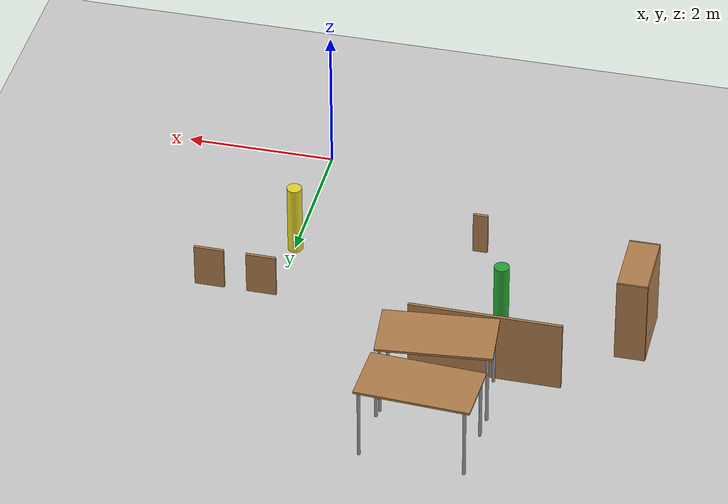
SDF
<sdf version="1.4">
 <world name="default">
  <model name="ground_plane">
   <static>1</static>
   <link name="link">
    <collision name="collision">
     <geometry><plane><normal>0 0 1</normal><size>50 50</size></plane></geometry>
     <surface><friction><ode><mu>100</mu><mu2>50</mu2></ode></friction></surface>
    </collision>
    <visual name="visual">
     <cast_shadows>0</cast_shadows>
     <geometry><plane><normal>0 0 1</normal><size>100 100</size></plane></geometry>
     <material>
      <script><uri>file://media/materials/scripts/gazebo.material</uri><name>Gazebo/Grey</name></script>
     </material>
    </visual>
    <velocity_decay><linear>0</linear><angular>0</angular></velocity_decay>
   </link>
  </model>
  <model name="target_cylinder_B">
   <pose>0 2 0.5 0 -0 0</pose>
   <link name="link">
    <inertial>
     <mass>1</mass>
     <inertia><ixx>1</ixx><ixy>0</ixy><ixz>0</ixz><iyy>1</iyy><iyz>0</iyz><izz>1</izz></inertia>
    </inertial>
    <collision name="collision">
     <geometry><cylinder><radius>0.1</radius><length>1</length></cylinder></geometry>
    </collision>
    <visual name="visual">
     <geometry><cylinder><radius>0.1</radius><length>1</length></cylinder></geometry>
     <material>
      <script><uri>file://media/materials/scripts/gazebo.material</uri><name>Gazebo/Yellow</name></script>
     </material>
    </visual>
    <velocity_decay><linear>0</linear><angular>0</angular></velocity_decay>
   </link>
   <static>1</static>
  </model>
  <model name="target_cylinder_D">
   <pose>-3 3 0.5 0 -0 0</pose>
   <link name="link">
    <inertial>
     <mass>1</mass>
     <inertia><ixx>1</ixx><ixy>0</ixy><ixz>0</ixz><iyy>1</iyy><iyz>0</iyz><izz>1</izz></inertia>
    </inertial>
    <collision name="collision">
     <geometry><cylinder><radius>0.1</radius><length>1</length></cylinder></geometry>
    </collision>
    <visual name="visual">
     <geometry><cylinder><radius>0.1</radius><length>1</length></cylinder></geometry>
     <material>
      <script><uri>file://media/materials/scripts/gazebo.material</uri><name>Gazebo/Green</name></script>
     </material>
    </visual>
    <velocity_decay><linear>0</linear><angular>0</angular></velocity_decay>
   </link>
   <static>1</static>
  </model>
  <model name="high_wall_4">
   <pose>-3 4 0.5 0 -0 0</pose>
   <link name="link">
    <inertial>
     <mass>1</mass>
     <inertia><ixx>1</ixx><ixy>0</ixy><ixz>0</ixz><iyy>1</iyy><iyz>0</iyz><izz>1</izz></inertia>
    </inertial>
    <collision name="collision"><geometry><box><size>2 0.04 1</size></box></geometry></collision>
    <visual name="visual">
     <geometry><box><size>2 0.04 1</size></box></geometry>
     <material>
      <script><uri>file://media/materials/scripts/gazebo.material</uri><name>Gazebo/Wood</name></script>
     </material>
    </visual>
    <velocity_decay><linear>0</linear><angular>0</angular></velocity_decay>
   </link>
   <static>1</static>
  </model>
  <model name="pillar_wall_1">
   <pose>0.2 3 0.3 0 -0 0</pose>
   <link name="link">
    <inertial>
     <mass>1</mass>
     <inertia><ixx>1</ixx><ixy>0</ixy><ixz>0</ixz><iyy>1</iyy><iyz>0</iyz><izz>1</izz></inertia>
    </inertial>
    <collision name="collision"><geometry><box><size>0.4 0.04 0.6</size></box></geometry></collision>
    <visual name="visual">
     <geometry><box><size>0.4 0.04 0.6</size></box></geometry>
     <material>
      <script><uri>file://media/materials/scripts/gazebo.material</uri><name>Gazebo/Wood</name></script>
     </material>
    </visual>
    <velocity_decay><linear>0</linear><angular>0</angular></velocity_decay>
   </link>
   <static>1</static>
  </model>
  <model name="pillar_wall_2">
   <pose>0.9 3 0.3 0 -0 0</pose>
   <link name="link">
    <inertial>
     <mass>1</mass>
     <inertia><ixx>1</ixx><ixy>0</ixy><ixz>0</ixz><iyy>1</iyy><iyz>0</iyz><izz>1</izz></inertia>
    </inertial>
    <collision name="collision"><geometry><box><size>0.4 0.04 0.6</size></box></geometry></collision>
    <visual name="visual">
     <geometry><box><size>0.4 0.04 0.6</size></box></geometry>
     <material>
      <script><uri>file://media/materials/scripts/gazebo.material</uri><name>Gazebo/Wood</name></script>
     </material>
    </visual>
    <velocity_decay><linear>0</linear><angular>0</angular></velocity_decay>
   </link>
   <static>1</static>
  </model>
  <model name="pillar_wall_10">
   <pose>-2.4 1.5 0.3 0 -0 0</pose>
   <link name="link">
    <inertial>
     <mass>1</mass>
     <inertia><ixx>1</ixx><ixy>0</ixy><ixz>0</ixz><iyy>1</iyy><iyz>0</iyz><izz>1</izz></inertia>
    </inertial>
    <collision name="collision"><geometry><box><size>0.2 0.04 0.6</size></box></geometry></collision>
    <visual name="visual">
     <geometry><box><size>0.2 0.04 0.6</size></box></geometry>
     <material>
      <script><uri>file://media/materials/scripts/gazebo.material</uri><name>Gazebo/Wood</name></script>
     </material>
    </visual>
    <velocity_decay><linear>0</linear><angular>0</angular></velocity_decay>
   </link>
   <static>1</static>
  </model>
  <model name="table_1">
   <pose>-2.5 5.5 0 0 0 -0.05</pose>
   <static>1</static>
   <link name="link">
    <collision name="surface">
     <pose>0 0 1 0 -0 0</pose>
     <geometry><box><size>1.5 0.8 0.03</size></box></geometry>
     <surface><friction><ode><mu>0.6</mu><mu2>0.6</mu2></ode></friction></surface>
    </collision>
    <visual name="visual1">
     <pose>0 0 1 0 -0 0</pose>
     <geometry><box><size>1.5 0.8 0.03</size></box></geometry>
     <material>
      <script><uri>file://media/materials/scripts/gazebo.material</uri><name>Gazebo/Wood</name></script>
     </material>
    </visual>
    <collision name="front_left_leg">
     <pose>0.68 0.38 0.5 0 -0 0</pose>
     <geometry><cylinder><radius>0.02</radius><length>1</length></cylinder></geometry>
    </collision>
    <visual name="front_left_leg">
     <pose>0.68 0.38 0.5 0 -0 0</pose>
     <geometry><cylinder><radius>0.02</radius><length>1</length></cylinder></geometry>
     <material>
      <script><uri>file://media/materials/scripts/gazebo.material</uri><name>Gazebo/Grey</name></script>
     </material>
    </visual>
    <collision name="front_right_leg">
     <pose>0.68 -0.38 0.5 0 -0 0</pose>
     <geometry><cylinder><radius>0.02</radius><length>1</length></cylinder></geometry>
    </collision>
    <visual name="front_right_leg">
     <pose>0.68 -0.38 0.5 0 -0 0</pose>
     <geometry><cylinder><radius>0.02</radius><length>1</length></cylinder></geometry>
     <material>
      <script><uri>file://media/materials/scripts/gazebo.material</uri><name>Gazebo/Grey</name></script>
     </material>
    </visual>
    <collision name="back_right_leg">
     <pose>-0.68 -0.38 0.5 0 -0 0</pose>
     <geometry><cylinder><radius>0.02</radius><length>1</length></cylinder></geometry>
    </collision>
    <visual name="back_right_leg">
     <pose>-0.68 -0.38 0.5 0 -0 0</pose>
     <geometry><cylinder><radius>0.02</radius><length>1</length></cylinder></geometry>
     <material>
      <script><uri>file://media/materials/scripts/gazebo.material</uri><name>Gazebo/Grey</name></script>
     </material>
    </visual>
    <collision name="back_left_leg">
     <pose>-0.68 0.38 0.5 0 -0 0</pose>
     <geometry><cylinder><radius>0.02</radius><length>1</length></cylinder></geometry>
    </collision>
    <visual name="back_left_leg">
     <pose>-0.68 0.38 0.5 0 -0 0</pose>
     <geometry><cylinder><radius>0.02</radius><length>1</length></cylinder></geometry>
     <material>
      <script><uri>file://media/materials/scripts/gazebo.material</uri><name>Gazebo/Grey</name></script>
     </material>
    </visual>
    <velocity_decay><linear>0</linear><angular>0</angular></velocity_decay>
   </link>
  </model>
  <model name="table_2">
   <pose>-2.5 4.53 0 0 -0 0.1</pose>
   <static>1</static>
   <link name="link">
    <collision name="surface">
     <pose>0 0 1 0 -0 0</pose>
     <geometry><box><size>1.5 0.8 0.03</size></box></geometry>
     <surface><friction><ode><mu>0.6</mu><mu2>0.6</mu2></ode></friction></surface>
    </collision>
    <visual name="visual1">
     <pose>0 0 1 0 -0 0</pose>
     <geometry><box><size>1.5 0.8 0.03</size></box></geometry>
     <material>
      <script><uri>file://media/materials/scripts/gazebo.material</uri><name>Gazebo/Wood</name></script>
     </material>
    </visual>
    <collision name="front_left_leg">
     <pose>0.68 0.38 0.5 0 -0 0</pose>
     <geometry><cylinder><radius>0.02</radius><length>1</length></cylinder></geometry>
    </collision>
    <visual name="front_left_leg">
     <pose>0.68 0.38 0.5 0 -0 0</pose>
     <geometry><cylinder><radius>0.02</radius><length>1</length></cylinder></geometry>
     <material>
      <script><uri>file://media/materials/scripts/gazebo.material</uri><name>Gazebo/Grey</name></script>
     </material>
    </visual>
    <collision name="front_right_leg">
     <pose>0.68 -0.38 0.5 0 -0 0</pose>
     <geometry><cylinder><radius>0.02</radius><length>1</length></cylinder></geometry>
    </collision>
    <visual name="front_right_leg">
     <pose>0.68 -0.38 0.5 0 -0 0</pose>
     <geometry><cylinder><radius>0.02</radius><length>1</length></cylinder></geometry>
     <material>
      <script><uri>file://media/materials/scripts/gazebo.material</uri><name>Gazebo/Grey</name></script>
     </material>
    </visual>
    <collision name="back_right_leg">
     <pose>-0.68 -0.38 0.5 0 -0 0</pose>
     <geometry><cylinder><radius>0.02</radius><length>1</length></cylinder></geometry>
    </collision>
    <visual name="back_right_leg">
     <pose>-0.68 -0.38 0.5 0 -0 0</pose>
     <geometry><cylinder><radius>0.02</radius><length>1</length></cylinder></geometry>
     <material>
      <script><uri>file://media/materials/scripts/gazebo.material</uri><name>Gazebo/Grey</name></script>
     </material>
    </visual>
    <collision name="back_left_leg">
     <pose>-0.68 0.38 0.5 0 -0 0</pose>
     <geometry><cylinder><radius>0.02</radius><length>1</length></cylinder></geometry>
    </collision>
    <visual name="back_left_leg">
     <pose>-0.68 0.38 0.5 0 -0 0</pose>
     <geometry><cylinder><radius>0.02</radius><length>1</length></cylinder></geometry>
     <material>
      <script><uri>file://media/materials/scripts/gazebo.material</uri><name>Gazebo/Grey</name></script>
     </material>
    </visual>
    <velocity_decay><linear>0</linear><angular>0</angular></velocity_decay>
   </link>
  </model>
  <model name="bookshelf_3">
   <static>1</static>
   <link name="link">
    <inertial><mass>1</mass></inertial>
    <collision name="back">
     <pose>0 0.005 0.6 0 -0 0</pose>
     <geometry><box><size>0.9 0.01 1.2</size></box></geometry>
    </collision>
    <visual name="visual1">
     <pose>0 0.005 0.6 0 -0 0</pose>
     <geometry><box><size>0.9 0.01 1.2</size></box></geometry>
     <material>
      <script><uri>file://media/materials/scripts/gazebo.material</uri><name>Gazebo/Wood</name></script>
     </material>
    </visual>
    <collision name="left_side">
     <pose>0.45 -0.195 0.6 0 -0 0</pose>
     <geometry><box><size>0.02 0.4 1.2</size></box></geometry>
    </collision>
    <visual name="visual2">
     <pose>0.45 -0.195 0.6 0 -0 0</pose>
     <geometry><box><size>0.02 0.4 1.2</size></box></geometry>
     <material>
      <script><uri>file://media/materials/scripts/gazebo.material</uri><name>Gazebo/Wood</name></script>
     </material>
    </visual>
    <collision name="right_side">
     <pose>-0.45 -0.195 0.6 0 -0 0</pose>
     <geometry><box><size>0.02 0.4 1.2</size></box></geometry>
    </collision>
    <visual name="visual3">
     <pose>-0.45 -0.195 0.6 0 -0 0</pose>
     <geometry><box><size>0.02 0.4 1.2</size></box></geometry>
     <material>
      <script><uri>file://media/materials/scripts/gazebo.material</uri><name>Gazebo/Wood</name></script>
     </material>
    </visual>
    <collision name="bottom">
     <pose>0 -0.195 0.03 0 -0 0</pose>
     <geometry><box><size>0.88 0.4 0.06</size></box></geometry>
    </collision>
    <visual name="visual4">
     <pose>0 -0.195 0.03 0 -0 0</pose>
     <geometry><box><size>0.88 0.4 0.06</size></box></geometry>
     <material>
      <script><uri>file://media/materials/scripts/gazebo.material</uri><name>Gazebo/Wood</name></script>
     </material>
    </visual>
    <collision name="top">
     <pose>0 -0.195 1.19 0 -0 0</pose>
     <geometry><box><size>0.88 0.4 0.02</size></box></geometry>
    </collision>
    <visual name="visual5">
     <pose>0 -0.195 1.19 0 -0 0</pose>
     <geometry><box><size>0.88 0.4 0.02</size></box></geometry>
     <material>
      <script><uri>file://media/materials/scripts/gazebo.material</uri><name>Gazebo/Wood</name></script>
     </material>
    </visual>
    <collision name="low_shelf">
     <pose>0 -0.195 0.43 0 -0 0</pose>
     <geometry><box><size>0.88 0.4 0.02</size></box></geometry>
    </collision>
    <visual name="visual6">
     <pose>0 -0.195 0.43 0 -0 0</pose>
     <geometry><box><size>0.88 0.4 0.02</size></box></geometry>
     <material>
      <script><uri>file://media/materials/scripts/gazebo.material</uri><name>Gazebo/Wood</name></script>
     </material>
    </visual>
    <collision name="high_shelf">
     <pose>0 -0.195 0.8 0 -0 0</pose>
     <geometry><box><size>0.88 0.4 0.02</size></box></geometry>
    </collision>
    <visual name="visual7">
     <pose>0 -0.195 0.8 0 -0 0</pose>
     <geometry><box><size>0.88 0.4 0.02</size></box></geometry>
     <material>
      <script><uri>file://media/materials/scripts/gazebo.material</uri><name>Gazebo/Wood</name></script>
     </material>
    </visual>
    <velocity_decay><linear>0</linear><angular>0</angular></velocity_decay>
   </link>
   <pose>-4.93114 2.78794 0 0 -0 1.57869</pose>
  </model>
 </world>
</sdf>
